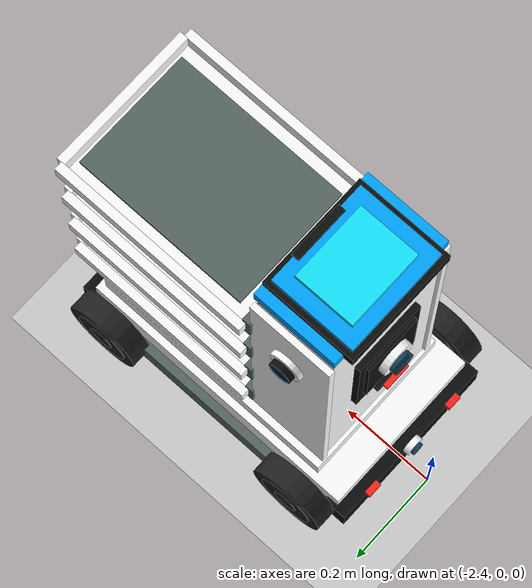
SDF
<?xml version="1.0"?>
<sdf version="1.9">
  <world name="default">
    <plugin filename="gz-sim-sensors-system" name="gz::sim::systems::Sensors"><render_engine>ogre2</render_engine></plugin>
    <plugin filename="gz-sim-scene-broadcaster-system" name="gz::sim::systems::SceneBroadcaster"/>
    <plugin filename="gz-sim-user-commands-system" name="gz::sim::systems::UserCommands"/>
    <gravity>0 0 -9.8</gravity>
    <physics name="default_physics" default="true" type="dartsim"><max_step_size>0.005</max_step_size><real_time_factor>1.0</real_time_factor></physics>
    <scene><ambient>0.4 0.4 0.4</ambient><background>0.7 0.7 0.7</background><shadows>false</shadows><grid>false</grid></scene>
    <light type="directional" name="sun"><pose>0 0 10 0 0 0</pose><diffuse>0.8 0.8 0.8</diffuse></light>
    <model name="ground_plane"><static>true</static><link name="link"><collision name="c"><geometry><plane><normal>0 0 1</normal><size>30 30</size></plane></geometry></collision><visual name="v"><geometry><plane><normal>0 0 1</normal><size>30 30</size></plane></geometry></visual></link></model>
<model name='service_robot_cart'>
      <pose>-2.0 0.0 0.05 0 0 0</pose>
    <link name='base_link'>
      <inertial>
        <pose>-0.061481330561952333 0 0.3113123560726142 0 0 0</pose>
        <mass>6.6874000000000002</mass>
        <inertia>
          <ixx>0.44284373931001708</ixx>
          <ixy>2.0178394523782369e-11</ixy>
          <ixz>0.062324650722655639</ixz>
          <iyy>0.57512697175413796</iyy>
          <iyz>0</iyz>
          <izz>0.23991032244412069</izz>
        </inertia>
      </inertial>
      <collision name='base_link_fixed_joint_lump__lower_chassis_collision_collision'>
        <pose>-0.025000000000000001 0 0.089999999999999997 0 0 0</pose>
        <geometry>
          <box>
            <size>0.59999999999999998 0.34999999999999998 0.10000000000000001</size>
          </box>
        </geometry>
      </collision>
      <collision name='base_link_fixed_joint_lump__upper_deck_collision_collision_1'>
        <pose>0 0 0.16 0 0 0</pose>
        <geometry>
          <box>
            <size>0.52500000000000002 0.32000000000000001 0.040000000000000001</size>
          </box>
        </geometry>
      </collision>
      <collision name='base_link_fixed_joint_lump__body_collision_collision_2'>
        <pose>-0.17499999999999999 0 0.48999999999999999 0 0 0</pose>
        <geometry>
          <box>
            <size>0.16 0.26000000000000001 0.68000000000000005</size>
          </box>
        </geometry>
      </collision>
      <collision name='base_link_fixed_joint_lump__left_side_camera_link_collision_collision_3'>
        <pose>-0.17499999999999999 0.14249999999999999 0.66999999999999993 -1.5707960000000001 1.5707963118937354 0</pose>
        <geometry>
          <cylinder>
            <length>0.035000000000000003</length>
            <radius>0.035000000000000003</radius>
          </cylinder>
        </geometry>
        <surface>
          <contact>
            <ode/>
          </contact>
          <friction>
            <ode/>
          </friction>
        </surface>
      </collision>
      <collision name='base_link_fixed_joint_lump__rear_camera_collision_collision_4'>
        <pose>-0.26750000000000002 0 0.55000000000000004 0 0 -3.1415923071795868</pose>
        <geometry>
          <box>
            <size>0.035000000000000003 0.13 0.17999999999999999</size>
          </box>
        </geometry>
      </collision>
      <collision name='base_link_fixed_joint_lump__right_side_camera_link_collision_collision_5'>
        <pose>-0.17499999999999999 -0.14249999999999999 0.66999999999999993 1.5707960000000001 1.5707963118937354 0</pose>
        <geometry>
          <cylinder>
            <length>0.035000000000000003</length>
            <radius>0.035000000000000003</radius>
          </cylinder>
        </geometry>
        <surface>
          <contact>
            <ode/>
          </contact>
          <friction>
            <ode/>
          </friction>
        </surface>
      </collision>
      <collision name='base_link_fixed_joint_lump__top_display_collision_collision_6'>
        <pose>-0.185 0 0.85749999999999993 0 0 0</pose>
        <geometry>
          <box>
            <size>0.20000000000000001 0.23999999999999999 0.040000000000000001</size>
          </box>
        </geometry>
      </collision>
      <collision name='base_link_fixed_joint_lump__tray_1_collision_collision_7'>
        <pose>0.12 0 0.23250000000000001 0 0 0</pose>
        <geometry>
          <box>
            <size>0.41999999999999998 0.32000000000000001 0.042500000000000003</size>
          </box>
        </geometry>
      </collision>
      <collision name='base_link_fixed_joint_lump__tray_2_collision_collision_8'>
        <pose>0.12 0 0.38250000000000001 0 0 0</pose>
        <geometry>
          <box>
            <size>0.41999999999999998 0.32000000000000001 0.042500000000000003</size>
          </box>
        </geometry>
      </collision>
      <collision name='base_link_fixed_joint_lump__tray_3_collision_collision_9'>
        <pose>0.12 0 0.53249999999999997 0 0 0</pose>
        <geometry>
          <box>
            <size>0.41999999999999998 0.32000000000000001 0.042500000000000003</size>
          </box>
        </geometry>
      </collision>
      <collision name='base_link_fixed_joint_lump__tray_4_collision_collision_10'>
        <pose>0.12 0 0.6825 0 0 0</pose>
        <geometry>
          <box>
            <size>0.41999999999999998 0.32000000000000001 0.042500000000000003</size>
          </box>
        </geometry>
      </collision>
      <collision name='base_link_fixed_joint_lump__front_sensor_link_collision_collision_11'>
        <pose>0.30249999999999999 0 0.11 0 1.5707963267948966 0</pose>
        <geometry>
          <cylinder>
            <length>0.017500000000000002</length>
            <radius>0.022499999999999999</radius>
          </cylinder>
        </geometry>
        <surface>
          <contact>
            <ode/>
          </contact>
          <friction>
            <ode/>
          </friction>
        </surface>
      </collision>
      <collision name='base_link_fixed_joint_lump__rear_sensor_link_collision_collision_12'>
        <pose>-0.35249999999999998 0 0.11 3.1415923071795868 1.5707963267948966 0</pose>
        <geometry>
          <cylinder>
            <length>0.017500000000000002</length>
            <radius>0.022499999999999999</radius>
          </cylinder>
        </geometry>
        <surface>
          <contact>
            <ode/>
          </contact>
          <friction>
            <ode/>
          </friction>
        </surface>
      </collision>
      <visual name='base_link_fixed_joint_lump__lower_chassis_visual'>
        <pose>-0.025000000000000001 0 0.089999999999999997 0 0 0</pose>
        <geometry>
          <box>
            <size>0.59999999999999998 0.34999999999999998 0.10000000000000001</size>
          </box>
        </geometry>
        <material>
          <diffuse>1 1 1 1</diffuse>
          <ambient>1 1 1 1</ambient>
        </material>
      </visual>
      <visual name='base_link_fixed_joint_lump__upper_deck_visual_1'>
        <pose>0 0 0.16 0 0 0</pose>
        <geometry>
          <box>
            <size>0.52500000000000002 0.32000000000000001 0.040000000000000001</size>
          </box>
        </geometry>
        <material>
          <diffuse>1 1 1 1</diffuse>
          <ambient>1 1 1 1</ambient>
        </material>
      </visual>
      <visual name='base_link_fixed_joint_lump__front_black_bumper_visual_2'>
        <pose>0.27500000000000002 0 0.080000000000000002 0 0 0</pose>
        <geometry>
          <box>
            <size>0.050000000000000003 0.37 0.059999999999999998</size>
          </box>
        </geometry>
        <material>
          <diffuse>0.0387500003 0.0487500019 0.0487500019 1</diffuse>
          <ambient>0.0387500003 0.0487500019 0.0487500019 1</ambient>
        </material>
      </visual>
      <visual name='base_link_fixed_joint_lump__rear_black_bumper_visual_3'>
        <pose>-0.32500000000000001 0 0.080000000000000002 0 0 0</pose>
        <geometry>
          <box>
            <size>0.050000000000000003 0.37 0.059999999999999998</size>
          </box>
        </geometry>
        <material>
          <diffuse>0.0387500003 0.0487500019 0.0487500019 1</diffuse>
          <ambient>0.0387500003 0.0487500019 0.0487500019 1</ambient>
        </material>
      </visual>
      <visual name='base_link_fixed_joint_lump__left_side_skirt_visual_4'>
        <pose>-0.014999999999999999 0.186 0.065000000000000002 0 0 0</pose>
        <geometry>
          <box>
            <size>0.47999999999999998 0.017500000000000002 0.055</size>
          </box>
        </geometry>
        <material>
          <diffuse>0.34375 0.402500004 0.392500013 1</diffuse>
          <ambient>0.34375 0.402500004 0.392500013 1</ambient>
        </material>
      </visual>
      <visual name='base_link_fixed_joint_lump__right_side_skirt_visual_5'>
        <pose>-0.014999999999999999 -0.186 0.065000000000000002 0 0 0</pose>
        <geometry>
          <box>
            <size>0.47999999999999998 0.017500000000000002 0.055</size>
          </box>
        </geometry>
        <material>
          <diffuse>0.34375 0.402500004 0.392500013 1</diffuse>
          <ambient>0.34375 0.402500004 0.392500013 1</ambient>
        </material>
      </visual>
      <visual name='base_link_fixed_joint_lump__front_red_indicator_left_visual_6'>
        <pose>0.30249999999999999 0.11 0.11 0 0 0</pose>
        <geometry>
          <box>
            <size>0.012500000000000001 0.029999999999999999 0.012500000000000001</size>
          </box>
        </geometry>
        <material>
          <diffuse>1 0.147500008 0.107500002 1</diffuse>
          <ambient>1 0.147500008 0.107500002 1</ambient>
        </material>
      </visual>
      <visual name='base_link_fixed_joint_lump__front_red_indicator_right_visual_7'>
        <pose>0.30249999999999999 -0.11 0.11 0 0 0</pose>
        <geometry>
          <box>
            <size>0.012500000000000001 0.029999999999999999 0.012500000000000001</size>
          </box>
        </geometry>
        <material>
          <diffuse>1 0.147500008 0.107500002 1</diffuse>
          <ambient>1 0.147500008 0.107500002 1</ambient>
        </material>
      </visual>
      <visual name='base_link_fixed_joint_lump__rear_red_indicator_left_visual_8'>
        <pose>-0.35249999999999998 0.11 0.11 0 0 0</pose>
        <geometry>
          <box>
            <size>0.012500000000000001 0.029999999999999999 0.012500000000000001</size>
          </box>
        </geometry>
        <material>
          <diffuse>1 0.147500008 0.107500002 1</diffuse>
          <ambient>1 0.147500008 0.107500002 1</ambient>
        </material>
      </visual>
      <visual name='base_link_fixed_joint_lump__rear_red_indicator_right_visual_9'>
        <pose>-0.35249999999999998 -0.11 0.11 0 0 0</pose>
        <geometry>
          <box>
            <size>0.012500000000000001 0.029999999999999999 0.012500000000000001</size>
          </box>
        </geometry>
        <material>
          <diffuse>1 0.147500008 0.107500002 1</diffuse>
          <ambient>1 0.147500008 0.107500002 1</ambient>
        </material>
      </visual>
      <visual name='base_link_fixed_joint_lump__straight_main_body_visual_10'>
        <pose>-0.17499999999999999 0 0.48999999999999999 0 0 0</pose>
        <geometry>
          <box>
            <size>0.16 0.26000000000000001 0.68000000000000005</size>
          </box>
        </geometry>
        <material>
          <diffuse>1 1 1 1</diffuse>
          <ambient>1 1 1 1</ambient>
        </material>
      </visual>
      <visual name='base_link_fixed_joint_lump__front_dark_service_panel_visual_11'>
        <pose>-0.087499999999999994 0 0.47999999999999998 0 0 0</pose>
        <geometry>
          <box>
            <size>0.012500000000000001 0.20999999999999999 0.54000000000000004</size>
          </box>
        </geometry>
        <material>
          <diffuse>0.34375 0.402500004 0.392500013 1</diffuse>
          <ambient>0.34375 0.402500004 0.392500013 1</ambient>
        </material>
      </visual>
      <visual name='base_link_fixed_joint_lump__rear_camera_recess_panel_visual_12'>
        <pose>-0.26250000000000001 0 0.54000000000000004 0 0 0</pose>
        <geometry>
          <box>
            <size>0.012500000000000001 0.14999999999999999 0.23000000000000001</size>
          </box>
        </geometry>
        <material>
          <diffuse>0.0387500003 0.0487500019 0.0487500019 1</diffuse>
          <ambient>0.0387500003 0.0487500019 0.0487500019 1</ambient>
        </material>
      </visual>
      <visual name='base_link_fixed_joint_lump__left_vertical_trim_visual_13'>
        <pose>-0.17499999999999999 0.13900000000000001 0.48999999999999999 0 0 0</pose>
        <geometry>
          <box>
            <size>0.17000000000000001 0.012500000000000001 0.63</size>
          </box>
        </geometry>
        <material>
          <diffuse>1 1 1 1</diffuse>
          <ambient>1 1 1 1</ambient>
        </material>
      </visual>
      <visual name='base_link_fixed_joint_lump__right_vertical_trim_visual_14'>
        <pose>-0.17499999999999999 -0.13900000000000001 0.48999999999999999 0 0 0</pose>
        <geometry>
          <box>
            <size>0.17000000000000001 0.012500000000000001 0.63</size>
          </box>
        </geometry>
        <material>
          <diffuse>1 1 1 1</diffuse>
          <ambient>1 1 1 1</ambient>
        </material>
      </visual>
      <visual name='base_link_fixed_joint_lump__top_blue_cap_visual_15'>
        <pose>-0.17499999999999999 0 0.84349999999999992 0 0 0</pose>
        <geometry>
          <box>
            <size>0.17000000000000001 0.27000000000000002 0.0275</size>
          </box>
        </geometry>
        <material>
          <diffuse>0 0.647500038 1 1</diffuse>
          <ambient>0 0.647500038 1 1</ambient>
        </material>
      </visual>
      <visual name='base_link_fixed_joint_lump__left_side_camera_housing_visual_16'>
        <pose>-0.17499999999999999 0.14249999999999999 0.66999999999999993 -1.5707960000000001 1.5707963118937354 0</pose>
        <geometry>
          <cylinder>
            <length>0.0275</length>
            <radius>0.032500000000000001</radius>
          </cylinder>
        </geometry>
        <material>
          <diffuse>1 1 1 1</diffuse>
          <ambient>1 1 1 1</ambient>
        </material>
      </visual>
      <visual name='base_link_fixed_joint_lump__left_side_camera_lens_visual_17'>
        <pose>-0.1749999957516663 0.15549999999999931 0.66999999999999993 -1.5707960000000001 1.5707963118937354 0</pose>
        <geometry>
          <cylinder>
            <length>0.029999999999999999</length>
            <radius>0.02</radius>
          </cylinder>
        </geometry>
        <material>
          <diffuse>0.0250000004 0.219999999 0.318749994 0.862999976</diffuse>
          <ambient>0.0250000004 0.219999999 0.318749994 0.862999976</ambient>
        </material>
      </visual>
      <visual name='base_link_fixed_joint_lump__left_side_camera_black_ring_visual_18'>
        <pose>-0.17499999673205099 0.15249999999999941 0.66999999999999993 -1.5707960000000001 1.5707963118937354 0</pose>
        <geometry>
          <cylinder>
            <length>0.032000000000000001</length>
            <radius>0.0235</radius>
          </cylinder>
        </geometry>
        <material>
          <diffuse>0.0387500003 0.0487500019 0.0487500019 1</diffuse>
          <ambient>0.0387500003 0.0487500019 0.0487500019 1</ambient>
        </material>
      </visual>
      <visual name='base_link_fixed_joint_lump__rear_camera_black_panel_visual_19'>
        <pose>-0.26750000000000002 0 0.55000000000000004 0 0 -3.1415923071795868</pose>
        <geometry>
          <box>
            <size>0.017500000000000002 0.12 0.16</size>
          </box>
        </geometry>
        <material>
          <diffuse>0.0387500003 0.0487500019 0.0487500019 1</diffuse>
          <ambient>0.0387500003 0.0487500019 0.0487500019 1</ambient>
        </material>
      </visual>
      <visual name='base_link_fixed_joint_lump__rear_camera_silver_ring_visual_20'>
        <pose>-0.27999999999999919 -4.3301275827424183e-09 0.57250000000000001 3.1415923071795868 1.5707963267948966 0</pose>
        <geometry>
          <cylinder>
            <length>0.02</length>
            <radius>0.035000000000000003</radius>
          </cylinder>
        </geometry>
        <material>
          <diffuse>1 1 1 1</diffuse>
          <ambient>1 1 1 1</ambient>
        </material>
      </visual>
      <visual name='base_link_fixed_joint_lump__rear_camera_glass_lens_visual_21'>
        <pose>-0.29249999999999848 -8.6602551654848365e-09 0.57250000000000001 3.1415923071795868 1.5707963267948966 0</pose>
        <geometry>
          <cylinder>
            <length>0.021999999999999999</length>
            <radius>0.022499999999999999</radius>
          </cylinder>
        </geometry>
        <material>
          <diffuse>0.0250000004 0.219999999 0.318749994 0.862999976</diffuse>
          <ambient>0.0250000004 0.219999999 0.318749994 0.862999976</ambient>
        </material>
      </visual>
      <visual name='base_link_fixed_joint_lump__rear_small_scanner_slot_visual_22'>
        <pose>-0.27749999999999941 -3.4641020661939352e-09 0.46750000000000003 0 0 -3.1415923071795868</pose>
        <geometry>
          <box>
            <size>0.016 0.080000000000000002 0.017500000000000002</size>
          </box>
        </geometry>
        <material>
          <diffuse>0.0387500003 0.0487500019 0.0487500019 1</diffuse>
          <ambient>0.0387500003 0.0487500019 0.0487500019 1</ambient>
        </material>
      </visual>
      <visual name='base_link_fixed_joint_lump__rear_small_red_line_visual_23'>
        <pose>-0.28799999999999881 -7.1014092356975657e-09 0.46750000000000003 0 0 -3.1415923071795868</pose>
        <geometry>
          <box>
            <size>0.017000000000000001 0.055 0.0050000000000000001</size>
          </box>
        </geometry>
        <material>
          <diffuse>1 0.147500008 0.107500002 1</diffuse>
          <ambient>1 0.147500008 0.107500002 1</ambient>
        </material>
      </visual>
      <visual name='base_link_fixed_joint_lump__right_side_camera_housing_visual_24'>
        <pose>-0.17499999999999999 -0.14249999999999999 0.66999999999999993 1.5707960000000001 1.5707963118937354 0</pose>
        <geometry>
          <cylinder>
            <length>0.0275</length>
            <radius>0.032500000000000001</radius>
          </cylinder>
        </geometry>
        <material>
          <diffuse>1 1 1 1</diffuse>
          <ambient>1 1 1 1</ambient>
        </material>
      </visual>
      <visual name='base_link_fixed_joint_lump__right_side_camera_lens_visual_25'>
        <pose>-0.1749999957516663 -0.15549999999999931 0.66999999999999993 1.5707960000000001 1.5707963118937354 0</pose>
        <geometry>
          <cylinder>
            <length>0.029999999999999999</length>
            <radius>0.02</radius>
          </cylinder>
        </geometry>
        <material>
          <diffuse>0.0250000004 0.219999999 0.318749994 0.862999976</diffuse>
          <ambient>0.0250000004 0.219999999 0.318749994 0.862999976</ambient>
        </material>
      </visual>
      <visual name='base_link_fixed_joint_lump__right_side_camera_black_ring_visual_26'>
        <pose>-0.17499999673205099 -0.15249999999999941 0.66999999999999993 1.5707960000000001 1.5707963118937354 0</pose>
        <geometry>
          <cylinder>
            <length>0.032000000000000001</length>
            <radius>0.0235</radius>
          </cylinder>
        </geometry>
        <material>
          <diffuse>0.0387500003 0.0487500019 0.0487500019 1</diffuse>
          <ambient>0.0387500003 0.0487500019 0.0487500019 1</ambient>
        </material>
      </visual>
      <visual name='base_link_fixed_joint_lump__top_display_black_housing_visual_27'>
        <pose>-0.185 0 0.85749999999999993 0 0 0</pose>
        <geometry>
          <box>
            <size>0.19 0.23000000000000001 0.0275</size>
          </box>
        </geometry>
        <material>
          <diffuse>0.0387500003 0.0487500019 0.0487500019 1</diffuse>
          <ambient>0.0387500003 0.0487500019 0.0487500019 1</ambient>
        </material>
      </visual>
      <visual name='base_link_fixed_joint_lump__top_display_blue_bezel_visual_28'>
        <pose>-0.185 0 0.87650000000000006 0 0 0</pose>
        <geometry>
          <box>
            <size>0.17000000000000001 0.20999999999999999 0.0089999999999999993</size>
          </box>
        </geometry>
        <material>
          <diffuse>0 0.647500038 1 1</diffuse>
          <ambient>0 0.647500038 1 1</ambient>
        </material>
      </visual>
      <visual name='base_link_fixed_joint_lump__top_display_screen_visual_29'>
        <pose>-0.185 0 0.88650000000000007 0 0 0</pose>
        <geometry>
          <box>
            <size>0.12 0.155 0.010500000000000001</size>
          </box>
        </geometry>
        <material>
          <diffuse>0.0787499994 0.90625006 1 0.90200001</diffuse>
          <ambient>0.0787499994 0.90625006 1 0.90200001</ambient>
        </material>
      </visual>
      <visual name='base_link_fixed_joint_lump__top_display_slot_visual_30'>
        <pose>-0.105 0 0.88949999999999996 0 0 0</pose>
        <geometry>
          <box>
            <size>0.014999999999999999 0.11 0.0060000000000000001</size>
          </box>
        </geometry>
        <material>
          <diffuse>0.0387500003 0.0487500019 0.0487500019 1</diffuse>
          <ambient>0.0387500003 0.0487500019 0.0487500019 1</ambient>
        </material>
      </visual>
      <visual name='base_link_fixed_joint_lump__tray_1_deck_visual_31'>
        <pose>0.12 0 0.215 0 0 0</pose>
        <geometry>
          <box>
            <size>0.40999999999999998 0.29999999999999999 0.02</size>
          </box>
        </geometry>
        <material>
          <diffuse>1 1 1 1</diffuse>
          <ambient>1 1 1 1</ambient>
        </material>
      </visual>
      <visual name='base_link_fixed_joint_lump__tray_1_dark_inset_visual_32'>
        <pose>0.13 0 0.23050000000000001 0 0 0</pose>
        <geometry>
          <box>
            <size>0.35999999999999999 0.25 0.0060000000000000001</size>
          </box>
        </geometry>
        <material>
          <diffuse>0.34375 0.402500004 0.392500013 1</diffuse>
          <ambient>0.34375 0.402500004 0.392500013 1</ambient>
        </material>
      </visual>
      <visual name='base_link_fixed_joint_lump__tray_1_left_rail_visual_33'>
        <pose>0.12 0.1575 0.24149999999999999 0 0 0</pose>
        <geometry>
          <box>
            <size>0.40999999999999998 0.017500000000000002 0.032500000000000001</size>
          </box>
        </geometry>
        <material>
          <diffuse>1 1 1 1</diffuse>
          <ambient>1 1 1 1</ambient>
        </material>
      </visual>
      <visual name='base_link_fixed_joint_lump__tray_1_right_rail_visual_34'>
        <pose>0.12 -0.1575 0.24149999999999999 0 0 0</pose>
        <geometry>
          <box>
            <size>0.40999999999999998 0.017500000000000002 0.032500000000000001</size>
          </box>
        </geometry>
        <material>
          <diffuse>1 1 1 1</diffuse>
          <ambient>1 1 1 1</ambient>
        </material>
      </visual>
      <visual name='base_link_fixed_joint_lump__tray_1_front_rail_visual_35'>
        <pose>0.32600000000000001 0 0.24149999999999999 0 0 0</pose>
        <geometry>
          <box>
            <size>0.017500000000000002 0.29999999999999999 0.032500000000000001</size>
          </box>
        </geometry>
        <material>
          <diffuse>1 1 1 1</diffuse>
          <ambient>1 1 1 1</ambient>
        </material>
      </visual>
      <visual name='base_link_fixed_joint_lump__tray_1_rear_bracket_visual_36'>
        <pose>-0.085999999999999993 0 0.23499999999999999 0 0 0</pose>
        <geometry>
          <box>
            <size>0.017500000000000002 0.29999999999999999 0.059999999999999998</size>
          </box>
        </geometry>
        <material>
          <diffuse>0.34375 0.402500004 0.392500013 1</diffuse>
          <ambient>0.34375 0.402500004 0.392500013 1</ambient>
        </material>
      </visual>
      <visual name='base_link_fixed_joint_lump__tray_2_deck_visual_37'>
        <pose>0.12 0 0.36499999999999999 0 0 0</pose>
        <geometry>
          <box>
            <size>0.40999999999999998 0.29999999999999999 0.02</size>
          </box>
        </geometry>
        <material>
          <diffuse>1 1 1 1</diffuse>
          <ambient>1 1 1 1</ambient>
        </material>
      </visual>
      <visual name='base_link_fixed_joint_lump__tray_2_dark_inset_visual_38'>
        <pose>0.13 0 0.3805 0 0 0</pose>
        <geometry>
          <box>
            <size>0.35999999999999999 0.25 0.0060000000000000001</size>
          </box>
        </geometry>
        <material>
          <diffuse>0.34375 0.402500004 0.392500013 1</diffuse>
          <ambient>0.34375 0.402500004 0.392500013 1</ambient>
        </material>
      </visual>
      <visual name='base_link_fixed_joint_lump__tray_2_left_rail_visual_39'>
        <pose>0.12 0.1575 0.39150000000000001 0 0 0</pose>
        <geometry>
          <box>
            <size>0.40999999999999998 0.017500000000000002 0.032500000000000001</size>
          </box>
        </geometry>
        <material>
          <diffuse>1 1 1 1</diffuse>
          <ambient>1 1 1 1</ambient>
        </material>
      </visual>
      <visual name='base_link_fixed_joint_lump__tray_2_right_rail_visual_40'>
        <pose>0.12 -0.1575 0.39150000000000001 0 0 0</pose>
        <geometry>
          <box>
            <size>0.40999999999999998 0.017500000000000002 0.032500000000000001</size>
          </box>
        </geometry>
        <material>
          <diffuse>1 1 1 1</diffuse>
          <ambient>1 1 1 1</ambient>
        </material>
      </visual>
      <visual name='base_link_fixed_joint_lump__tray_2_front_rail_visual_41'>
        <pose>0.32600000000000001 0 0.39150000000000001 0 0 0</pose>
        <geometry>
          <box>
            <size>0.017500000000000002 0.29999999999999999 0.032500000000000001</size>
          </box>
        </geometry>
        <material>
          <diffuse>1 1 1 1</diffuse>
          <ambient>1 1 1 1</ambient>
        </material>
      </visual>
      <visual name='base_link_fixed_joint_lump__tray_2_rear_bracket_visual_42'>
        <pose>-0.085999999999999993 0 0.38500000000000001 0 0 0</pose>
        <geometry>
          <box>
            <size>0.017500000000000002 0.29999999999999999 0.059999999999999998</size>
          </box>
        </geometry>
        <material>
          <diffuse>0.34375 0.402500004 0.392500013 1</diffuse>
          <ambient>0.34375 0.402500004 0.392500013 1</ambient>
        </material>
      </visual>
      <visual name='base_link_fixed_joint_lump__tray_3_deck_visual_43'>
        <pose>0.12 0 0.51500000000000001 0 0 0</pose>
        <geometry>
          <box>
            <size>0.40999999999999998 0.29999999999999999 0.02</size>
          </box>
        </geometry>
        <material>
          <diffuse>1 1 1 1</diffuse>
          <ambient>1 1 1 1</ambient>
        </material>
      </visual>
      <visual name='base_link_fixed_joint_lump__tray_3_dark_inset_visual_44'>
        <pose>0.13 0 0.53049999999999997 0 0 0</pose>
        <geometry>
          <box>
            <size>0.35999999999999999 0.25 0.0060000000000000001</size>
          </box>
        </geometry>
        <material>
          <diffuse>0.34375 0.402500004 0.392500013 1</diffuse>
          <ambient>0.34375 0.402500004 0.392500013 1</ambient>
        </material>
      </visual>
      <visual name='base_link_fixed_joint_lump__tray_3_left_rail_visual_45'>
        <pose>0.12 0.1575 0.54149999999999998 0 0 0</pose>
        <geometry>
          <box>
            <size>0.40999999999999998 0.017500000000000002 0.032500000000000001</size>
          </box>
        </geometry>
        <material>
          <diffuse>1 1 1 1</diffuse>
          <ambient>1 1 1 1</ambient>
        </material>
      </visual>
      <visual name='base_link_fixed_joint_lump__tray_3_right_rail_visual_46'>
        <pose>0.12 -0.1575 0.54149999999999998 0 0 0</pose>
        <geometry>
          <box>
            <size>0.40999999999999998 0.017500000000000002 0.032500000000000001</size>
          </box>
        </geometry>
        <material>
          <diffuse>1 1 1 1</diffuse>
          <ambient>1 1 1 1</ambient>
        </material>
      </visual>
      <visual name='base_link_fixed_joint_lump__tray_3_front_rail_visual_47'>
        <pose>0.32600000000000001 0 0.54149999999999998 0 0 0</pose>
        <geometry>
          <box>
            <size>0.017500000000000002 0.29999999999999999 0.032500000000000001</size>
          </box>
        </geometry>
        <material>
          <diffuse>1 1 1 1</diffuse>
          <ambient>1 1 1 1</ambient>
        </material>
      </visual>
      <visual name='base_link_fixed_joint_lump__tray_3_rear_bracket_visual_48'>
        <pose>-0.085999999999999993 0 0.53500000000000003 0 0 0</pose>
        <geometry>
          <box>
            <size>0.017500000000000002 0.29999999999999999 0.059999999999999998</size>
          </box>
        </geometry>
        <material>
          <diffuse>0.34375 0.402500004 0.392500013 1</diffuse>
          <ambient>0.34375 0.402500004 0.392500013 1</ambient>
        </material>
      </visual>
      <visual name='base_link_fixed_joint_lump__tray_4_deck_visual_49'>
        <pose>0.12 0 0.66500000000000004 0 0 0</pose>
        <geometry>
          <box>
            <size>0.40999999999999998 0.29999999999999999 0.02</size>
          </box>
        </geometry>
        <material>
          <diffuse>1 1 1 1</diffuse>
          <ambient>1 1 1 1</ambient>
        </material>
      </visual>
      <visual name='base_link_fixed_joint_lump__tray_4_dark_inset_visual_50'>
        <pose>0.13 0 0.68049999999999999 0 0 0</pose>
        <geometry>
          <box>
            <size>0.35999999999999999 0.25 0.0060000000000000001</size>
          </box>
        </geometry>
        <material>
          <diffuse>0.34375 0.402500004 0.392500013 1</diffuse>
          <ambient>0.34375 0.402500004 0.392500013 1</ambient>
        </material>
      </visual>
      <visual name='base_link_fixed_joint_lump__tray_4_left_rail_visual_51'>
        <pose>0.12 0.1575 0.6915 0 0 0</pose>
        <geometry>
          <box>
            <size>0.40999999999999998 0.017500000000000002 0.032500000000000001</size>
          </box>
        </geometry>
        <material>
          <diffuse>1 1 1 1</diffuse>
          <ambient>1 1 1 1</ambient>
        </material>
      </visual>
      <visual name='base_link_fixed_joint_lump__tray_4_right_rail_visual_52'>
        <pose>0.12 -0.1575 0.6915 0 0 0</pose>
        <geometry>
          <box>
            <size>0.40999999999999998 0.017500000000000002 0.032500000000000001</size>
          </box>
        </geometry>
        <material>
          <diffuse>1 1 1 1</diffuse>
          <ambient>1 1 1 1</ambient>
        </material>
      </visual>
      <visual name='base_link_fixed_joint_lump__tray_4_front_rail_visual_53'>
        <pose>0.32600000000000001 0 0.6915 0 0 0</pose>
        <geometry>
          <box>
            <size>0.017500000000000002 0.29999999999999999 0.032500000000000001</size>
          </box>
        </geometry>
        <material>
          <diffuse>1 1 1 1</diffuse>
          <ambient>1 1 1 1</ambient>
        </material>
      </visual>
      <visual name='base_link_fixed_joint_lump__tray_4_rear_bracket_visual_54'>
        <pose>-0.085999999999999993 0 0.68499999999999994 0 0 0</pose>
        <geometry>
          <box>
            <size>0.017500000000000002 0.29999999999999999 0.059999999999999998</size>
          </box>
        </geometry>
        <material>
          <diffuse>0.34375 0.402500004 0.392500013 1</diffuse>
          <ambient>0.34375 0.402500004 0.392500013 1</ambient>
        </material>
      </visual>
      <visual name='base_link_fixed_joint_lump__front_sensor_link_silver_ring_visual_55'>
        <pose>0.30249999999999999 0 0.11 0 1.5707963267948966 0</pose>
        <geometry>
          <cylinder>
            <length>0.012500000000000001</length>
            <radius>0.02</radius>
          </cylinder>
        </geometry>
        <material>
          <diffuse>1 1 1 1</diffuse>
          <ambient>1 1 1 1</ambient>
        </material>
      </visual>
      <visual name='base_link_fixed_joint_lump__front_sensor_link_glass_visual_56'>
        <pose>0.3085 0 0.11 0 1.5707963267948966 0</pose>
        <geometry>
          <cylinder>
            <length>0.014999999999999999</length>
            <radius>0.012999999999999999</radius>
          </cylinder>
        </geometry>
        <material>
          <diffuse>0.0250000004 0.219999999 0.318749994 0.862999976</diffuse>
          <ambient>0.0250000004 0.219999999 0.318749994 0.862999976</ambient>
        </material>
      </visual>
      <visual name='base_link_fixed_joint_lump__rear_sensor_link_silver_ring_visual_57'>
        <pose>-0.35249999999999998 0 0.11 3.1415923071795868 1.5707963267948966 0</pose>
        <geometry>
          <cylinder>
            <length>0.012500000000000001</length>
            <radius>0.02</radius>
          </cylinder>
        </geometry>
        <material>
          <diffuse>1 1 1 1</diffuse>
          <ambient>1 1 1 1</ambient>
        </material>
      </visual>
      <visual name='base_link_fixed_joint_lump__rear_sensor_link_glass_visual_58'>
        <pose>-0.3584999999999996 -2.078461239716361e-09 0.11 3.1415923071795868 1.5707963267948966 0</pose>
        <geometry>
          <cylinder>
            <length>0.014999999999999999</length>
            <radius>0.012999999999999999</radius>
          </cylinder>
        </geometry>
        <material>
          <diffuse>0.0250000004 0.219999999 0.318749994 0.862999976</diffuse>
          <ambient>0.0250000004 0.219999999 0.318749994 0.862999976</ambient>
        </material>
      </visual>
      <sensor name='front_lidar' type='gpu_lidar'>
        <always_on>true</always_on>
        <update_rate>10</update_rate>
        <topic>scan</topic>
        <lidar>
          <scan>
            <horizontal>
              <samples>360</samples>
              <resolution>1</resolution>
              <min_angle>-3.1415899999999999</min_angle>
              <max_angle>3.1415899999999999</max_angle>
            </horizontal>
            <vertical>
              <samples>1</samples>
              <resolution>1</resolution>
              <min_angle>0</min_angle>
              <max_angle>0</max_angle>
            </vertical>
          </scan>
          <range>
            <min>0.10000000000000001</min>
            <max>10</max>
            <resolution>0.01</resolution>
          </range>
          <noise>
            <type>gaussian</type>
            <mean>0</mean>
            <stddev>0.01</stddev>
          </noise>
        </lidar>
        <pose>0.30249999999999999 0 0.11 0 0 0</pose>
      </sensor>
      <sensor name='front_camera' type='camera'>
        <always_on>true</always_on>
        <update_rate>30</update_rate>
        <camera name='front_camera'>
          <horizontal_fov>1.0469999999999999</horizontal_fov>
          <image>
            <width>640</width>
            <height>480</height>
            <format>R8G8B8</format>
          </image>
          <clip>
            <near>0.050000000000000003</near>
            <far>100</far>
          </clip>
        </camera>
        <pose>0.30249999999999999 0 0.11 0 0 0</pose>
      </sensor>
    </link>
    <joint name='front_left_wheel_joint' type='revolute'>
      <pose relative_to='base_link'>0.215 0.20499999999999999 0.080000000000000002 0 0 0</pose>
      <parent>base_link</parent>
      <child>front_left_wheel_link</child>
      <axis>
        <xyz>0 1 0</xyz>
        <limit>
          <lower>-inf</lower>
          <upper>inf</upper>
        </limit>
        <dynamics>
          <damping>0.02</damping>
          <friction>0.01</friction>
          <spring_reference>0</spring_reference>
          <spring_stiffness>0</spring_stiffness>
        </dynamics>
      </axis>
    </joint>
    <link name='front_left_wheel_link'>
      <pose relative_to='front_left_wheel_joint'>0 0 0 0 0 0</pose>
      <inertial>
        <pose>0 0 0 0 0 0</pose>
        <mass>0.25</mass>
        <inertia>
          <ixx>0.00044219000000000002</ixx>
          <ixy>0</ixy>
          <ixz>0</ixz>
          <iyy>0.00080000000000000004</iyy>
          <iyz>0</iyz>
          <izz>0.00044219000000000002</izz>
        </inertia>
      </inertial>
      <collision name='front_left_wheel_link_fixed_joint_lump__wheel_collision_collision'>
        <pose>0 0 0 -1.5707959999999999 0 0</pose>
        <geometry>
          <cylinder>
            <length>0.044999999999999998</length>
            <radius>0.080000000000000002</radius>
          </cylinder>
        </geometry>
      </collision>
      <visual name='front_left_wheel_link_rubber_tire_visual'>
        <pose>0 0 0 -1.5707959999999999 0 0</pose>
        <geometry>
          <cylinder>
            <length>0.044999999999999998</length>
            <radius>0.080000000000000002</radius>
          </cylinder>
        </geometry>
        <material>
          <script>
            <name>Gazebo/Black</name>
            <uri>file://media/materials/scripts/gazebo.material</uri>
          </script>
          <diffuse>0.0887500048 0.0887500048 0.0887500048 1</diffuse>
          <ambient>0.0887500048 0.0887500048 0.0887500048 1</ambient>
        </material>
      </visual>
      <visual name='front_left_wheel_link_silver_hub_visual_1'>
        <pose>0 0 0 -1.5707959999999999 0 0</pose>
        <geometry>
          <cylinder>
            <length>0.049000000000000002</length>
            <radius>0.057500000000000002</radius>
          </cylinder>
        </geometry>
        <material>
          <script>
            <name>Gazebo/Black</name>
            <uri>file://media/materials/scripts/gazebo.material</uri>
          </script>
          <diffuse>1 1 1 1</diffuse>
          <ambient>1 1 1 1</ambient>
        </material>
      </visual>
      <visual name='front_left_wheel_link_dark_center_cap_visual_2'>
        <pose>0 0 0 -1.5707959999999999 0 0</pose>
        <geometry>
          <cylinder>
            <length>0.050999999999999997</length>
            <radius>0.025999999999999999</radius>
          </cylinder>
        </geometry>
        <material>
          <script>
            <name>Gazebo/Black</name>
            <uri>file://media/materials/scripts/gazebo.material</uri>
          </script>
          <diffuse>0.34375 0.402500004 0.392500013 1</diffuse>
          <ambient>0.34375 0.402500004 0.392500013 1</ambient>
        </material>
      </visual>
    </link>
    <joint name='front_right_wheel_joint' type='revolute'>
      <pose relative_to='base_link'>0.215 -0.20499999999999999 0.080000000000000002 0 0 0</pose>
      <parent>base_link</parent>
      <child>front_right_wheel_link</child>
      <axis>
        <xyz>0 1 0</xyz>
        <limit>
          <lower>-inf</lower>
          <upper>inf</upper>
        </limit>
        <dynamics>
          <damping>0.02</damping>
          <friction>0.01</friction>
          <spring_reference>0</spring_reference>
          <spring_stiffness>0</spring_stiffness>
        </dynamics>
      </axis>
    </joint>
    <link name='front_right_wheel_link'>
      <pose relative_to='front_right_wheel_joint'>0 0 0 0 0 0</pose>
      <inertial>
        <pose>0 0 0 0 0 0</pose>
        <mass>0.25</mass>
        <inertia>
          <ixx>0.00044219000000000002</ixx>
          <ixy>0</ixy>
          <ixz>0</ixz>
          <iyy>0.00080000000000000004</iyy>
          <iyz>0</iyz>
          <izz>0.00044219000000000002</izz>
        </inertia>
      </inertial>
      <collision name='front_right_wheel_link_fixed_joint_lump__wheel_collision_collision'>
        <pose>0 0 0 -1.5707959999999999 0 0</pose>
        <geometry>
          <cylinder>
            <length>0.044999999999999998</length>
            <radius>0.080000000000000002</radius>
          </cylinder>
        </geometry>
      </collision>
      <visual name='front_right_wheel_link_rubber_tire_visual'>
        <pose>0 0 0 -1.5707959999999999 0 0</pose>
        <geometry>
          <cylinder>
            <length>0.044999999999999998</length>
            <radius>0.080000000000000002</radius>
          </cylinder>
        </geometry>
        <material>
          <script>
            <name>Gazebo/Black</name>
            <uri>file://media/materials/scripts/gazebo.material</uri>
          </script>
          <diffuse>0.0887500048 0.0887500048 0.0887500048 1</diffuse>
          <ambient>0.0887500048 0.0887500048 0.0887500048 1</ambient>
        </material>
      </visual>
      <visual name='front_right_wheel_link_silver_hub_visual_1'>
        <pose>0 0 0 -1.5707959999999999 0 0</pose>
        <geometry>
          <cylinder>
            <length>0.049000000000000002</length>
            <radius>0.057500000000000002</radius>
          </cylinder>
        </geometry>
        <material>
          <script>
            <name>Gazebo/Black</name>
            <uri>file://media/materials/scripts/gazebo.material</uri>
          </script>
          <diffuse>1 1 1 1</diffuse>
          <ambient>1 1 1 1</ambient>
        </material>
      </visual>
      <visual name='front_right_wheel_link_dark_center_cap_visual_2'>
        <pose>0 0 0 -1.5707959999999999 0 0</pose>
        <geometry>
          <cylinder>
            <length>0.050999999999999997</length>
            <radius>0.025999999999999999</radius>
          </cylinder>
        </geometry>
        <material>
          <script>
            <name>Gazebo/Black</name>
            <uri>file://media/materials/scripts/gazebo.material</uri>
          </script>
          <diffuse>0.34375 0.402500004 0.392500013 1</diffuse>
          <ambient>0.34375 0.402500004 0.392500013 1</ambient>
        </material>
      </visual>
    </link>
    <joint name='rear_left_wheel_joint' type='revolute'>
      <pose relative_to='base_link'>-0.245 0.20499999999999999 0.080000000000000002 0 0 0</pose>
      <parent>base_link</parent>
      <child>rear_left_wheel_link</child>
      <axis>
        <xyz>0 1 0</xyz>
        <limit>
          <lower>-inf</lower>
          <upper>inf</upper>
        </limit>
        <dynamics>
          <damping>0.02</damping>
          <friction>0.01</friction>
          <spring_reference>0</spring_reference>
          <spring_stiffness>0</spring_stiffness>
        </dynamics>
      </axis>
    </joint>
    <link name='rear_left_wheel_link'>
      <pose relative_to='rear_left_wheel_joint'>0 0 0 0 0 0</pose>
      <inertial>
        <pose>0 0 0 0 0 0</pose>
        <mass>0.25</mass>
        <inertia>
          <ixx>0.00044219000000000002</ixx>
          <ixy>0</ixy>
          <ixz>0</ixz>
          <iyy>0.00080000000000000004</iyy>
          <iyz>0</iyz>
          <izz>0.00044219000000000002</izz>
        </inertia>
      </inertial>
      <collision name='rear_left_wheel_link_fixed_joint_lump__wheel_collision_collision'>
        <pose>0 0 0 -1.5707959999999999 0 0</pose>
        <geometry>
          <cylinder>
            <length>0.044999999999999998</length>
            <radius>0.080000000000000002</radius>
          </cylinder>
        </geometry>
      </collision>
      <visual name='rear_left_wheel_link_rubber_tire_visual'>
        <pose>0 0 0 -1.5707959999999999 0 0</pose>
        <geometry>
          <cylinder>
            <length>0.044999999999999998</length>
            <radius>0.080000000000000002</radius>
          </cylinder>
        </geometry>
        <material>
          <script>
            <name>Gazebo/Black</name>
            <uri>file://media/materials/scripts/gazebo.material</uri>
          </script>
          <diffuse>0.0887500048 0.0887500048 0.0887500048 1</diffuse>
          <ambient>0.0887500048 0.0887500048 0.0887500048 1</ambient>
        </material>
      </visual>
      <visual name='rear_left_wheel_link_silver_hub_visual_1'>
        <pose>0 0 0 -1.5707959999999999 0 0</pose>
        <geometry>
          <cylinder>
            <length>0.049000000000000002</length>
            <radius>0.057500000000000002</radius>
          </cylinder>
        </geometry>
        <material>
          <script>
            <name>Gazebo/Black</name>
            <uri>file://media/materials/scripts/gazebo.material</uri>
          </script>
          <diffuse>1 1 1 1</diffuse>
          <ambient>1 1 1 1</ambient>
        </material>
      </visual>
      <visual name='rear_left_wheel_link_dark_center_cap_visual_2'>
        <pose>0 0 0 -1.5707959999999999 0 0</pose>
        <geometry>
          <cylinder>
            <length>0.050999999999999997</length>
            <radius>0.025999999999999999</radius>
          </cylinder>
        </geometry>
        <material>
          <script>
            <name>Gazebo/Black</name>
            <uri>file://media/materials/scripts/gazebo.material</uri>
          </script>
          <diffuse>0.34375 0.402500004 0.392500013 1</diffuse>
          <ambient>0.34375 0.402500004 0.392500013 1</ambient>
        </material>
      </visual>
    </link>
    <joint name='rear_right_wheel_joint' type='revolute'>
      <pose relative_to='base_link'>-0.245 -0.20499999999999999 0.080000000000000002 0 0 0</pose>
      <parent>base_link</parent>
      <child>rear_right_wheel_link</child>
      <axis>
        <xyz>0 1 0</xyz>
        <limit>
          <lower>-inf</lower>
          <upper>inf</upper>
        </limit>
        <dynamics>
          <damping>0.02</damping>
          <friction>0.01</friction>
          <spring_reference>0</spring_reference>
          <spring_stiffness>0</spring_stiffness>
        </dynamics>
      </axis>
    </joint>
    <link name='rear_right_wheel_link'>
      <pose relative_to='rear_right_wheel_joint'>0 0 0 0 0 0</pose>
      <inertial>
        <pose>0 0 0 0 0 0</pose>
        <mass>0.25</mass>
        <inertia>
          <ixx>0.00044219000000000002</ixx>
          <ixy>0</ixy>
          <ixz>0</ixz>
          <iyy>0.00080000000000000004</iyy>
          <iyz>0</iyz>
          <izz>0.00044219000000000002</izz>
        </inertia>
      </inertial>
      <collision name='rear_right_wheel_link_fixed_joint_lump__wheel_collision_collision'>
        <pose>0 0 0 -1.5707959999999999 0 0</pose>
        <geometry>
          <cylinder>
            <length>0.044999999999999998</length>
            <radius>0.080000000000000002</radius>
          </cylinder>
        </geometry>
      </collision>
      <visual name='rear_right_wheel_link_rubber_tire_visual'>
        <pose>0 0 0 -1.5707959999999999 0 0</pose>
        <geometry>
          <cylinder>
            <length>0.044999999999999998</length>
            <radius>0.080000000000000002</radius>
          </cylinder>
        </geometry>
        <material>
          <script>
            <name>Gazebo/Black</name>
            <uri>file://media/materials/scripts/gazebo.material</uri>
          </script>
          <diffuse>0.0887500048 0.0887500048 0.0887500048 1</diffuse>
          <ambient>0.0887500048 0.0887500048 0.0887500048 1</ambient>
        </material>
      </visual>
      <visual name='rear_right_wheel_link_silver_hub_visual_1'>
        <pose>0 0 0 -1.5707959999999999 0 0</pose>
        <geometry>
          <cylinder>
            <length>0.049000000000000002</length>
            <radius>0.057500000000000002</radius>
          </cylinder>
        </geometry>
        <material>
          <script>
            <name>Gazebo/Black</name>
            <uri>file://media/materials/scripts/gazebo.material</uri>
          </script>
          <diffuse>1 1 1 1</diffuse>
          <ambient>1 1 1 1</ambient>
        </material>
      </visual>
      <visual name='rear_right_wheel_link_dark_center_cap_visual_2'>
        <pose>0 0 0 -1.5707959999999999 0 0</pose>
        <geometry>
          <cylinder>
            <length>0.050999999999999997</length>
            <radius>0.025999999999999999</radius>
          </cylinder>
        </geometry>
        <material>
          <script>
            <name>Gazebo/Black</name>
            <uri>file://media/materials/scripts/gazebo.material</uri>
          </script>
          <diffuse>0.34375 0.402500004 0.392500013 1</diffuse>
          <ambient>0.34375 0.402500004 0.392500013 1</ambient>
        </material>
      </visual>
    </link>
    <plugin name='gz::sim::systems::DiffDrive' filename='gz-sim-diff-drive-system'>
      <left_joint>front_left_wheel_joint</left_joint>
      <left_joint>rear_left_wheel_joint</left_joint>
      <right_joint>front_right_wheel_joint</right_joint>
      <right_joint>rear_right_wheel_joint</right_joint>
      <wheel_separation>0.41</wheel_separation>
      <wheel_radius>0.08</wheel_radius>
      <odom_frame_id>odom</odom_frame_id>
      <child_frame_id>base_link</child_frame_id>
    </plugin>
    <frame name='left_side_camera_optical_frame_joint' attached_to='left_side_camera_link'>
      <pose>0 0 0 -1.5707959999999999 0 -1.5707959999999999</pose>
    </frame>
    <frame name='left_side_camera_optical_frame' attached_to='left_side_camera_optical_frame_joint'>
      <pose>0 0 0 0 0 0</pose>
    </frame>
    <frame name='body_to_left_side_camera_link_joint' attached_to='body_link'>
      <pose>0 0.14249999999999999 0.17999999999999999 0 0 1.5707959999999999</pose>
    </frame>
    <frame name='left_side_camera_link' attached_to='body_to_left_side_camera_link_joint'>
      <pose>0 0 0 0 0 0</pose>
    </frame>
    <frame name='rear_camera_optical_joint' attached_to='rear_camera_link'>
      <pose>0 0 0 -1.5707959999999999 0 -1.5707959999999999</pose>
    </frame>
    <frame name='rear_camera_optical_frame' attached_to='rear_camera_optical_joint'>
      <pose>0 0 0 0 0 0</pose>
    </frame>
    <frame name='body_to_rear_camera_joint' attached_to='body_link'>
      <pose>-0.092499999999999999 0 0.059999999999999998 0 0 -3.1415923071795868</pose>
    </frame>
    <frame name='rear_camera_link' attached_to='body_to_rear_camera_joint'>
      <pose>0 0 0 0 0 0</pose>
    </frame>
    <frame name='right_side_camera_optical_frame_joint' attached_to='right_side_camera_link'>
      <pose>0 0 0 -1.5707959999999999 0 -1.5707959999999999</pose>
    </frame>
    <frame name='right_side_camera_optical_frame' attached_to='right_side_camera_optical_frame_joint'>
      <pose>0 0 0 0 0 0</pose>
    </frame>
    <frame name='body_to_right_side_camera_link_joint' attached_to='body_link'>
      <pose>0 -0.14249999999999999 0.17999999999999999 0 0 -1.5707959999999999</pose>
    </frame>
    <frame name='right_side_camera_link' attached_to='body_to_right_side_camera_link_joint'>
      <pose>0 0 0 0 0 0</pose>
    </frame>
    <frame name='body_to_top_display_joint' attached_to='body_link'>
      <pose>-0.01 0 0.36749999999999999 0 0 0</pose>
    </frame>
    <frame name='top_display_link' attached_to='body_to_top_display_joint'>
      <pose>0 0 0 0 0 0</pose>
    </frame>
    <frame name='tray_1_surface_frame_joint' attached_to='tray_1_link'>
      <pose>0 0 0.040000000000000001 0 0 0</pose>
    </frame>
    <frame name='tray_1_surface_frame' attached_to='tray_1_surface_frame_joint'>
      <pose>0 0 0 0 0 0</pose>
    </frame>
    <frame name='tray_1_joint' attached_to='body_link'>
      <pose>0.29499999999999998 0 -0.27500000000000002 0 0 0</pose>
    </frame>
    <frame name='tray_1_link' attached_to='tray_1_joint'>
      <pose>0 0 0 0 0 0</pose>
    </frame>
    <frame name='tray_2_surface_frame_joint' attached_to='tray_2_link'>
      <pose>0 0 0.040000000000000001 0 0 0</pose>
    </frame>
    <frame name='tray_2_surface_frame' attached_to='tray_2_surface_frame_joint'>
      <pose>0 0 0 0 0 0</pose>
    </frame>
    <frame name='tray_2_joint' attached_to='body_link'>
      <pose>0.29499999999999998 0 -0.125 0 0 0</pose>
    </frame>
    <frame name='tray_2_link' attached_to='tray_2_joint'>
      <pose>0 0 0 0 0 0</pose>
    </frame>
    <frame name='tray_3_surface_frame_joint' attached_to='tray_3_link'>
      <pose>0 0 0.040000000000000001 0 0 0</pose>
    </frame>
    <frame name='tray_3_surface_frame' attached_to='tray_3_surface_frame_joint'>
      <pose>0 0 0 0 0 0</pose>
    </frame>
    <frame name='tray_3_joint' attached_to='body_link'>
      <pose>0.29499999999999998 0 0.025000000000000001 0 0 0</pose>
    </frame>
    <frame name='tray_3_link' attached_to='tray_3_joint'>
      <pose>0 0 0 0 0 0</pose>
    </frame>
    <frame name='tray_4_surface_frame_joint' attached_to='tray_4_link'>
      <pose>0 0 0.040000000000000001 0 0 0</pose>
    </frame>
    <frame name='tray_4_surface_frame' attached_to='tray_4_surface_frame_joint'>
      <pose>0 0 0 0 0 0</pose>
    </frame>
    <frame name='tray_4_joint' attached_to='body_link'>
      <pose>0.29499999999999998 0 0.17499999999999999 0 0 0</pose>
    </frame>
    <frame name='tray_4_link' attached_to='tray_4_joint'>
      <pose>0 0 0 0 0 0</pose>
    </frame>
    <frame name='base_to_body_joint' attached_to='base_link'>
      <pose>-0.17499999999999999 0 0.48999999999999999 0 0 0</pose>
    </frame>
    <frame name='body_link' attached_to='base_to_body_joint'>
      <pose>0 0 0 0 0 0</pose>
    </frame>
    <frame name='front_camera_optical_joint' attached_to='front_sensor_link'>
      <pose>0 0 0 -1.5707959999999999 0 -1.5707959999999999</pose>
    </frame>
    <frame name='front_camera_optical_frame' attached_to='front_camera_optical_joint'>
      <pose>0 0 0 0 0 0</pose>
    </frame>
    <frame name='front_sensor_link_joint' attached_to='base_link'>
      <pose>0.30249999999999999 0 0.11 0 0 0</pose>
    </frame>
    <frame name='front_sensor_link' attached_to='front_sensor_link_joint'>
      <pose>0 0 0 0 0 0</pose>
    </frame>
    <frame name='rear_sensor_link_joint' attached_to='base_link'>
      <pose>-0.35249999999999998 0 0.11 0 0 -3.1415923071795868</pose>
    </frame>
    <frame name='rear_sensor_link' attached_to='rear_sensor_link_joint'>
      <pose>0 0 0 0 0 0</pose>
    </frame>
  </model>
  </world>
</sdf>
